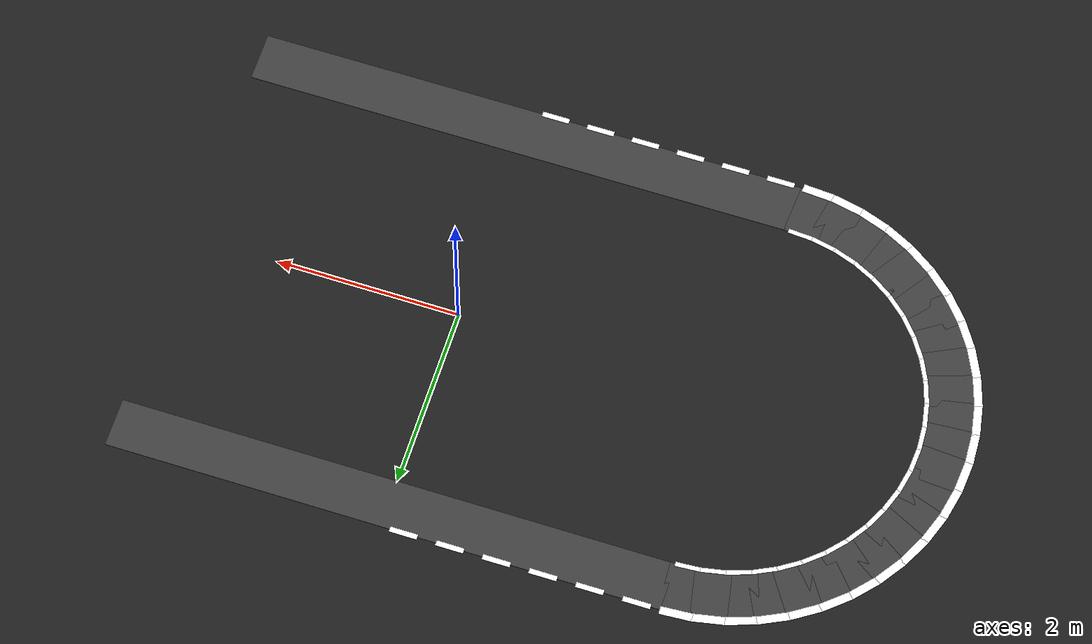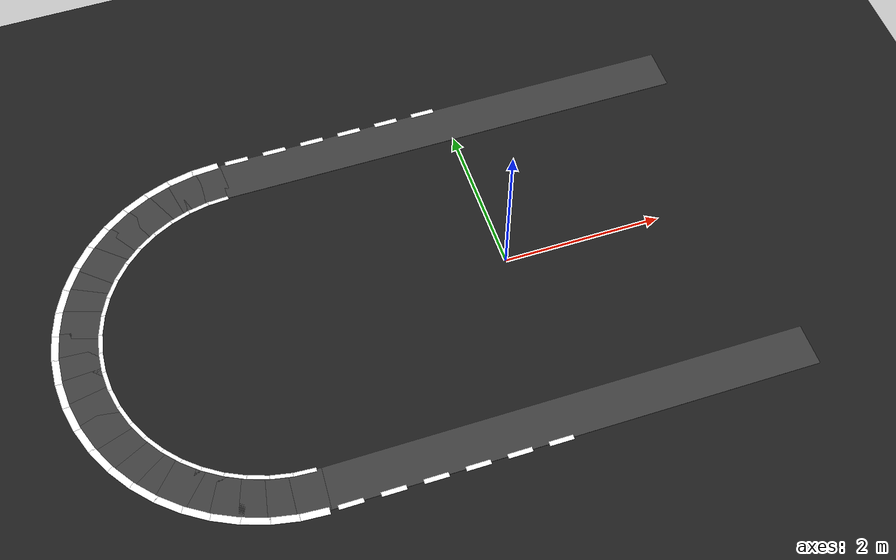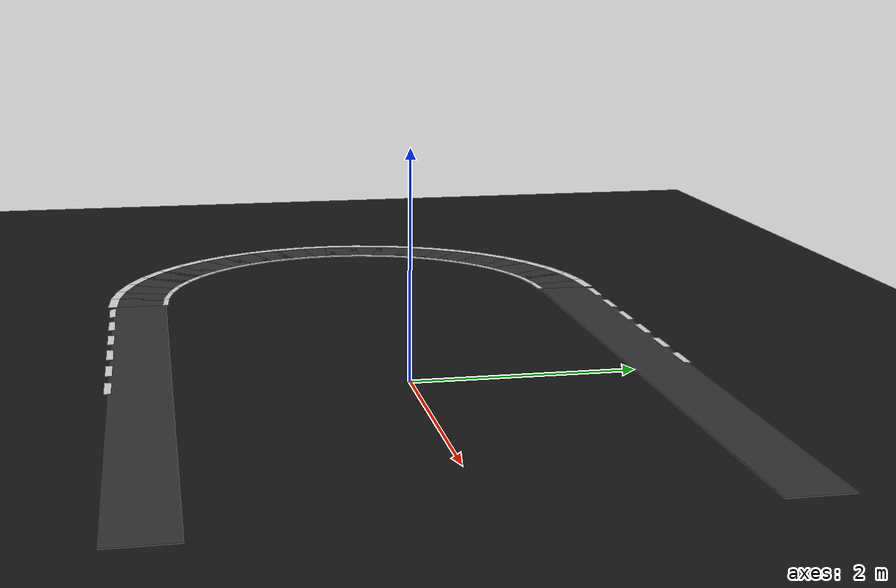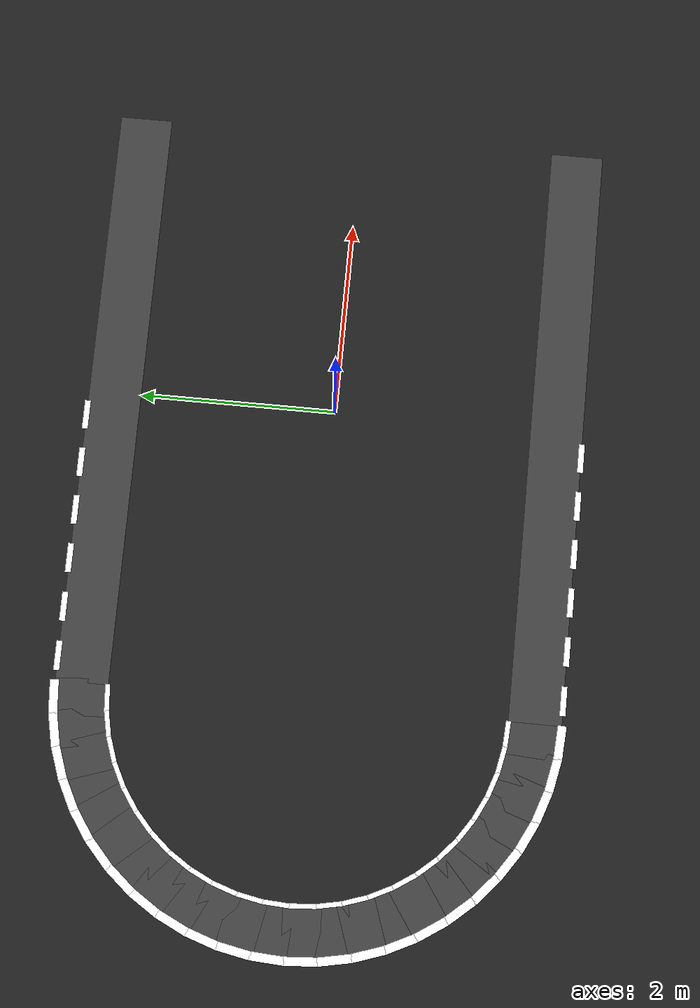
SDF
<sdf version="1.6">
 <world name="oval_lane_world">
  <model name="ground_plane">
   <static>true</static>
   <link name="link">
    <collision name="collision">
     <geometry><plane><normal>0 0 1</normal><size>100 100</size></plane></geometry>
     <surface><friction><ode><mu>1.0</mu><mu2>1.0</mu2></ode></friction></surface>
    </collision>
    <visual name="visual">
     <geometry><plane><normal>0 0 1</normal><size>100 100</size></plane></geometry>
     <material><ambient>0.10 0.10 0.10 1</ambient><diffuse>0.12 0.12 0.12 1</diffuse></material>
    </visual>
   </link>
  </model>
  <model name="road_top">
   <static>true</static>
   <pose>0.00000 2.26700 0.00250 0 0 0.00000</pose>
   <link name="link">
    <visual name="visual">
     <geometry><box><size>6.00000 0.53400 0.00500</size></box></geometry>
     <material>
      <ambient>0.250 0.250 0.250 1</ambient>
      <diffuse>0.250 0.250 0.250 1</diffuse>
      <specular>0.05 0.05 0.05 1</specular>
     </material>
    </visual>
   </link>
  </model>
  <model name="road_bot">
   <static>true</static>
   <pose>0.00000 -2.26700 0.00250 0 0 0.00000</pose>
   <link name="link">
    <visual name="visual">
     <geometry><box><size>6.00000 0.53400 0.00500</size></box></geometry>
     <material>
      <ambient>0.250 0.250 0.250 1</ambient>
      <diffuse>0.250 0.250 0.250 1</diffuse>
      <specular>0.05 0.05 0.05 1</specular>
     </material>
    </visual>
   </link>
  </model>
  <model name="dl_top_1_0">
   <static>true</static>
   <pose>-2.75000 2.53400 0.00700 0 0 0.00000</pose>
   <link name="link">
    <visual name="visual">
     <geometry><box><size>0.30000 0.06000 0.00400</size></box></geometry>
     <material>
      <ambient>1.000 1.000 1.000 1</ambient>
      <diffuse>1.000 1.000 1.000 1</diffuse>
      <specular>0.05 0.05 0.05 1</specular>
     </material>
    </visual>
   </link>
  </model>
  <model name="dl_top_1_1">
   <static>true</static>
   <pose>-2.25000 2.53400 0.00700 0 0 0.00000</pose>
   <link name="link">
    <visual name="visual">
     <geometry><box><size>0.30000 0.06000 0.00400</size></box></geometry>
     <material>
      <ambient>1.000 1.000 1.000 1</ambient>
      <diffuse>1.000 1.000 1.000 1</diffuse>
      <specular>0.05 0.05 0.05 1</specular>
     </material>
    </visual>
   </link>
  </model>
  <model name="dl_top_1_2">
   <static>true</static>
   <pose>-1.75000 2.53400 0.00700 0 0 0.00000</pose>
   <link name="link">
    <visual name="visual">
     <geometry><box><size>0.30000 0.06000 0.00400</size></box></geometry>
     <material>
      <ambient>1.000 1.000 1.000 1</ambient>
      <diffuse>1.000 1.000 1.000 1</diffuse>
      <specular>0.05 0.05 0.05 1</specular>
     </material>
    </visual>
   </link>
  </model>
  <model name="dl_top_1_3">
   <static>true</static>
   <pose>-1.25000 2.53400 0.00700 0 0 0.00000</pose>
   <link name="link">
    <visual name="visual">
     <geometry><box><size>0.30000 0.06000 0.00400</size></box></geometry>
     <material>
      <ambient>1.000 1.000 1.000 1</ambient>
      <diffuse>1.000 1.000 1.000 1</diffuse>
      <specular>0.05 0.05 0.05 1</specular>
     </material>
    </visual>
   </link>
  </model>
  <model name="dl_top_1_4">
   <static>true</static>
   <pose>-0.75000 2.53400 0.00700 0 0 0.00000</pose>
   <link name="link">
    <visual name="visual">
     <geometry><box><size>0.30000 0.06000 0.00400</size></box></geometry>
     <material>
      <ambient>1.000 1.000 1.000 1</ambient>
      <diffuse>1.000 1.000 1.000 1</diffuse>
      <specular>0.05 0.05 0.05 1</specular>
     </material>
    </visual>
   </link>
  </model>
  <model name="dl_top_1_5">
   <static>true</static>
   <pose>-0.25000 2.53400 0.00700 0 0 0.00000</pose>
   <link name="link">
    <visual name="visual">
     <geometry><box><size>0.30000 0.06000 0.00400</size></box></geometry>
     <material>
      <ambient>1.000 1.000 1.000 1</ambient>
      <diffuse>1.000 1.000 1.000 1</diffuse>
      <specular>0.05 0.05 0.05 1</specular>
     </material>
    </visual>
   </link>
  </model>
  <model name="dl_bot_1_0">
   <static>true</static>
   <pose>-2.75000 -2.53400 0.00700 0 0 0.00000</pose>
   <link name="link">
    <visual name="visual">
     <geometry><box><size>0.30000 0.06000 0.00400</size></box></geometry>
     <material>
      <ambient>1.000 1.000 1.000 1</ambient>
      <diffuse>1.000 1.000 1.000 1</diffuse>
      <specular>0.05 0.05 0.05 1</specular>
     </material>
    </visual>
   </link>
  </model>
  <model name="dl_bot_1_1">
   <static>true</static>
   <pose>-2.25000 -2.53400 0.00700 0 0 0.00000</pose>
   <link name="link">
    <visual name="visual">
     <geometry><box><size>0.30000 0.06000 0.00400</size></box></geometry>
     <material>
      <ambient>1.000 1.000 1.000 1</ambient>
      <diffuse>1.000 1.000 1.000 1</diffuse>
      <specular>0.05 0.05 0.05 1</specular>
     </material>
    </visual>
   </link>
  </model>
  <model name="dl_bot_1_2">
   <static>true</static>
   <pose>-1.75000 -2.53400 0.00700 0 0 0.00000</pose>
   <link name="link">
    <visual name="visual">
     <geometry><box><size>0.30000 0.06000 0.00400</size></box></geometry>
     <material>
      <ambient>1.000 1.000 1.000 1</ambient>
      <diffuse>1.000 1.000 1.000 1</diffuse>
      <specular>0.05 0.05 0.05 1</specular>
     </material>
    </visual>
   </link>
  </model>
  <model name="dl_bot_1_3">
   <static>true</static>
   <pose>-1.25000 -2.53400 0.00700 0 0 0.00000</pose>
   <link name="link">
    <visual name="visual">
     <geometry><box><size>0.30000 0.06000 0.00400</size></box></geometry>
     <material>
      <ambient>1.000 1.000 1.000 1</ambient>
      <diffuse>1.000 1.000 1.000 1</diffuse>
      <specular>0.05 0.05 0.05 1</specular>
     </material>
    </visual>
   </link>
  </model>
  <model name="dl_bot_1_4">
   <static>true</static>
   <pose>-0.75000 -2.53400 0.00700 0 0 0.00000</pose>
   <link name="link">
    <visual name="visual">
     <geometry><box><size>0.30000 0.06000 0.00400</size></box></geometry>
     <material>
      <ambient>1.000 1.000 1.000 1</ambient>
      <diffuse>1.000 1.000 1.000 1</diffuse>
      <specular>0.05 0.05 0.05 1</specular>
     </material>
    </visual>
   </link>
  </model>
  <model name="dl_bot_1_5">
   <static>true</static>
   <pose>-0.25000 -2.53400 0.00700 0 0 0.00000</pose>
   <link name="link">
    <visual name="visual">
     <geometry><box><size>0.30000 0.06000 0.00400</size></box></geometry>
     <material>
      <ambient>1.000 1.000 1.000 1</ambient>
      <diffuse>1.000 1.000 1.000 1</diffuse>
      <specular>0.05 0.05 0.05 1</specular>
     </material>
    </visual>
   </link>
  </model>
  <model name="road_l_0">
   <static>true</static>
   <pose>-3.14777 -2.25466 0.00250 0.0 0.0 3.07614</pose>
   <link name="link">
    <visual name="visual">
     <geometry><box><size>0.38165 0.53400 0.00500</size></box></geometry>
     <material>
      <ambient>0.250 0.250 0.250 1</ambient>
      <diffuse>0.250 0.250 0.250 1</diffuse>
      <specular>0.05 0.05 0.05 1</specular>
     </material>
    </visual>
   </link>
  </model>
  <model name="cl_l_0_0">
   <static>true</static>
   <pose>-3.13081 -1.99572 0.00700 0 0 3.07614</pose>
   <link name="link">
    <visual name="visual">
     <geometry><box><size>0.27180 0.05000 0.00400</size></box></geometry>
     <material>
      <ambient>1.000 1.000 1.000 1</ambient>
      <diffuse>1.000 1.000 1.000 1</diffuse>
      <specular>0.05 0.05 0.05 1</specular>
     </material>
    </visual>
   </link>
  </model>
  <model name="cl_l_1_0">
   <static>true</static>
   <pose>-3.16573 -2.52857 0.00700 0 0 3.07614</pose>
   <link name="link">
    <visual name="visual">
     <geometry><box><size>0.34170 0.09000 0.00400</size></box></geometry>
     <material>
      <ambient>1.000 1.000 1.000 1</ambient>
      <diffuse>1.000 1.000 1.000 1</diffuse>
      <specular>0.05 0.05 0.05 1</specular>
     </material>
    </visual>
   </link>
  </model>
  <model name="road_l_1">
   <static>true</static>
   <pose>-3.44081 -2.21609 0.00250 0.0 0.0 2.94524</pose>
   <link name="link">
    <visual name="visual">
     <geometry><box><size>0.38165 0.53400 0.00500</size></box></geometry>
     <material>
      <ambient>0.250 0.250 0.250 1</ambient>
      <diffuse>0.250 0.250 0.250 1</diffuse>
      <specular>0.05 0.05 0.05 1</specular>
     </material>
    </visual>
   </link>
  </model>
  <model name="cl_l_0_1">
   <static>true</static>
   <pose>-3.39018 -1.96157 0.00700 0 0 2.94524</pose>
   <link name="link">
    <visual name="visual">
     <geometry><box><size>0.27180 0.05000 0.00400</size></box></geometry>
     <material>
      <ambient>1.000 1.000 1.000 1</ambient>
      <diffuse>1.000 1.000 1.000 1</diffuse>
      <specular>0.05 0.05 0.05 1</specular>
     </material>
    </visual>
   </link>
  </model>
  <model name="cl_l_1_1">
   <static>true</static>
   <pose>-3.49436 -2.48531 0.00700 0 0 2.94524</pose>
   <link name="link">
    <visual name="visual">
     <geometry><box><size>0.34170 0.09000 0.00400</size></box></geometry>
     <material>
      <ambient>1.000 1.000 1.000 1</ambient>
      <diffuse>1.000 1.000 1.000 1</diffuse>
      <specular>0.05 0.05 0.05 1</specular>
     </material>
    </visual>
   </link>
  </model>
  <model name="road_l_2">
   <static>true</static>
   <pose>-3.72629 -2.13959 0.00250 0.0 0.0 2.81434</pose>
   <link name="link">
    <visual name="visual">
     <geometry><box><size>0.38165 0.53400 0.00500</size></box></geometry>
     <material>
      <ambient>0.250 0.250 0.250 1</ambient>
      <diffuse>0.250 0.250 0.250 1</diffuse>
      <specular>0.05 0.05 0.05 1</specular>
     </material>
    </visual>
   </link>
  </model>
  <model name="cl_l_0_2">
   <static>true</static>
   <pose>-3.64288 -1.89386 0.00700 0 0 2.81434</pose>
   <link name="link">
    <visual name="visual">
     <geometry><box><size>0.27180 0.05000 0.00400</size></box></geometry>
     <material>
      <ambient>1.000 1.000 1.000 1</ambient>
      <diffuse>1.000 1.000 1.000 1</diffuse>
      <specular>0.05 0.05 0.05 1</specular>
     </material>
    </visual>
   </link>
  </model>
  <model name="cl_l_1_2">
   <static>true</static>
   <pose>-3.81453 -2.39952 0.00700 0 0 2.81434</pose>
   <link name="link">
    <visual name="visual">
     <geometry><box><size>0.34170 0.09000 0.00400</size></box></geometry>
     <material>
      <ambient>1.000 1.000 1.000 1</ambient>
      <diffuse>1.000 1.000 1.000 1</diffuse>
      <specular>0.05 0.05 0.05 1</specular>
     </material>
    </visual>
   </link>
  </model>
  <model name="road_l_3">
   <static>true</static>
   <pose>-3.99935 -2.02648 0.00250 0.0 0.0 2.68344</pose>
   <link name="link">
    <visual name="visual">
     <geometry><box><size>0.38165 0.53400 0.00500</size></box></geometry>
     <material>
      <ambient>0.250 0.250 0.250 1</ambient>
      <diffuse>0.250 0.250 0.250 1</diffuse>
      <specular>0.05 0.05 0.05 1</specular>
     </material>
    </visual>
   </link>
  </model>
  <model name="cl_l_0_3">
   <static>true</static>
   <pose>-3.88458 -1.79375 0.00700 0 0 2.68344</pose>
   <link name="link">
    <visual name="visual">
     <geometry><box><size>0.27180 0.05000 0.00400</size></box></geometry>
     <material>
      <ambient>1.000 1.000 1.000 1</ambient>
      <diffuse>1.000 1.000 1.000 1</diffuse>
      <specular>0.05 0.05 0.05 1</specular>
     </material>
    </visual>
   </link>
  </model>
  <model name="cl_l_1_3">
   <static>true</static>
   <pose>-4.12076 -2.27268 0.00700 0 0 2.68344</pose>
   <link name="link">
    <visual name="visual">
     <geometry><box><size>0.34170 0.09000 0.00400</size></box></geometry>
     <material>
      <ambient>1.000 1.000 1.000 1</ambient>
      <diffuse>1.000 1.000 1.000 1</diffuse>
      <specular>0.05 0.05 0.05 1</specular>
     </material>
    </visual>
   </link>
  </model>
  <model name="road_l_4">
   <static>true</static>
   <pose>-4.25531 -1.87871 0.00250 0.0 0.0 2.55254</pose>
   <link name="link">
    <visual name="visual">
     <geometry><box><size>0.38165 0.53400 0.00500</size></box></geometry>
     <material>
      <ambient>0.250 0.250 0.250 1</ambient>
      <diffuse>0.250 0.250 0.250 1</diffuse>
      <specular>0.05 0.05 0.05 1</specular>
     </material>
    </visual>
   </link>
  </model>
  <model name="cl_l_0_4">
   <static>true</static>
   <pose>-4.11114 -1.66294 0.00700 0 0 2.55254</pose>
   <link name="link">
    <visual name="visual">
     <geometry><box><size>0.27180 0.05000 0.00400</size></box></geometry>
     <material>
      <ambient>1.000 1.000 1.000 1</ambient>
      <diffuse>1.000 1.000 1.000 1</diffuse>
      <specular>0.05 0.05 0.05 1</specular>
     </material>
    </visual>
   </link>
  </model>
  <model name="cl_l_1_4">
   <static>true</static>
   <pose>-4.40781 -2.10694 0.00700 0 0 2.55254</pose>
   <link name="link">
    <visual name="visual">
     <geometry><box><size>0.34170 0.09000 0.00400</size></box></geometry>
     <material>
      <ambient>1.000 1.000 1.000 1</ambient>
      <diffuse>1.000 1.000 1.000 1</diffuse>
      <specular>0.05 0.05 0.05 1</specular>
     </material>
    </visual>
   </link>
  </model>
  <model name="road_l_5">
   <static>true</static>
   <pose>-4.48979 -1.69878 0.00250 0.0 0.0 2.42164</pose>
   <link name="link">
    <visual name="visual">
     <geometry><box><size>0.38165 0.53400 0.00500</size></box></geometry>
     <material>
      <ambient>0.250 0.250 0.250 1</ambient>
      <diffuse>0.250 0.250 0.250 1</diffuse>
      <specular>0.05 0.05 0.05 1</specular>
     </material>
    </visual>
   </link>
  </model>
  <model name="cl_l_0_5">
   <static>true</static>
   <pose>-4.31869 -1.50368 0.00700 0 0 2.42164</pose>
   <link name="link">
    <visual name="visual">
     <geometry><box><size>0.27180 0.05000 0.00400</size></box></geometry>
     <material>
      <ambient>1.000 1.000 1.000 1</ambient>
      <diffuse>1.000 1.000 1.000 1</diffuse>
      <specular>0.05 0.05 0.05 1</specular>
     </material>
    </visual>
   </link>
  </model>
  <model name="cl_l_1_5">
   <static>true</static>
   <pose>-4.67078 -1.90516 0.00700 0 0 2.42164</pose>
   <link name="link">
    <visual name="visual">
     <geometry><box><size>0.34170 0.09000 0.00400</size></box></geometry>
     <material>
      <ambient>1.000 1.000 1.000 1</ambient>
      <diffuse>1.000 1.000 1.000 1</diffuse>
      <specular>0.05 0.05 0.05 1</specular>
     </material>
    </visual>
   </link>
  </model>
  <model name="road_l_6">
   <static>true</static>
   <pose>-4.69878 -1.48980 0.00250 0.0 0.0 2.29074</pose>
   <link name="link">
    <visual name="visual">
     <geometry><box><size>0.38165 0.53400 0.00500</size></box></geometry>
     <material>
      <ambient>0.250 0.250 0.250 1</ambient>
      <diffuse>0.250 0.250 0.250 1</diffuse>
      <specular>0.05 0.05 0.05 1</specular>
     </material>
    </visual>
   </link>
  </model>
  <model name="cl_l_0_6">
   <static>true</static>
   <pose>-4.50368 -1.31869 0.00700 0 0 2.29074</pose>
   <link name="link">
    <visual name="visual">
     <geometry><box><size>0.27180 0.05000 0.00400</size></box></geometry>
     <material>
      <ambient>1.000 1.000 1.000 1</ambient>
      <diffuse>1.000 1.000 1.000 1</diffuse>
      <specular>0.05 0.05 0.05 1</specular>
     </material>
    </visual>
   </link>
  </model>
  <model name="cl_l_1_6">
   <static>true</static>
   <pose>-4.90516 -1.67078 0.00700 0 0 2.29074</pose>
   <link name="link">
    <visual name="visual">
     <geometry><box><size>0.34170 0.09000 0.00400</size></box></geometry>
     <material>
      <ambient>1.000 1.000 1.000 1</ambient>
      <diffuse>1.000 1.000 1.000 1</diffuse>
      <specular>0.05 0.05 0.05 1</specular>
     </material>
    </visual>
   </link>
  </model>
  <model name="road_l_7">
   <static>true</static>
   <pose>-4.87871 -1.25531 0.00250 0.0 0.0 2.15984</pose>
   <link name="link">
    <visual name="visual">
     <geometry><box><size>0.38165 0.53400 0.00500</size></box></geometry>
     <material>
      <ambient>0.250 0.250 0.250 1</ambient>
      <diffuse>0.250 0.250 0.250 1</diffuse>
      <specular>0.05 0.05 0.05 1</specular>
     </material>
    </visual>
   </link>
  </model>
  <model name="cl_l_0_7">
   <static>true</static>
   <pose>-4.66294 -1.11114 0.00700 0 0 2.15984</pose>
   <link name="link">
    <visual name="visual">
     <geometry><box><size>0.27180 0.05000 0.00400</size></box></geometry>
     <material>
      <ambient>1.000 1.000 1.000 1</ambient>
      <diffuse>1.000 1.000 1.000 1</diffuse>
      <specular>0.05 0.05 0.05 1</specular>
     </material>
    </visual>
   </link>
  </model>
  <model name="cl_l_1_7">
   <static>true</static>
   <pose>-5.10694 -1.40781 0.00700 0 0 2.15984</pose>
   <link name="link">
    <visual name="visual">
     <geometry><box><size>0.34170 0.09000 0.00400</size></box></geometry>
     <material>
      <ambient>1.000 1.000 1.000 1</ambient>
      <diffuse>1.000 1.000 1.000 1</diffuse>
      <specular>0.05 0.05 0.05 1</specular>
     </material>
    </visual>
   </link>
  </model>
  <model name="road_l_8">
   <static>true</static>
   <pose>-5.02648 -0.99935 0.00250 0.0 0.0 2.02895</pose>
   <link name="link">
    <visual name="visual">
     <geometry><box><size>0.38165 0.53400 0.00500</size></box></geometry>
     <material>
      <ambient>0.250 0.250 0.250 1</ambient>
      <diffuse>0.250 0.250 0.250 1</diffuse>
      <specular>0.05 0.05 0.05 1</specular>
     </material>
    </visual>
   </link>
  </model>
  <model name="cl_l_0_8">
   <static>true</static>
   <pose>-4.79375 -0.88458 0.00700 0 0 2.02895</pose>
   <link name="link">
    <visual name="visual">
     <geometry><box><size>0.27180 0.05000 0.00400</size></box></geometry>
     <material>
      <ambient>1.000 1.000 1.000 1</ambient>
      <diffuse>1.000 1.000 1.000 1</diffuse>
      <specular>0.05 0.05 0.05 1</specular>
     </material>
    </visual>
   </link>
  </model>
  <model name="cl_l_1_8">
   <static>true</static>
   <pose>-5.27268 -1.12076 0.00700 0 0 2.02895</pose>
   <link name="link">
    <visual name="visual">
     <geometry><box><size>0.34170 0.09000 0.00400</size></box></geometry>
     <material>
      <ambient>1.000 1.000 1.000 1</ambient>
      <diffuse>1.000 1.000 1.000 1</diffuse>
      <specular>0.05 0.05 0.05 1</specular>
     </material>
    </visual>
   </link>
  </model>
  <model name="road_l_9">
   <static>true</static>
   <pose>-5.13959 -0.72629 0.00250 0.0 0.0 1.89805</pose>
   <link name="link">
    <visual name="visual">
     <geometry><box><size>0.38165 0.53400 0.00500</size></box></geometry>
     <material>
      <ambient>0.250 0.250 0.250 1</ambient>
      <diffuse>0.250 0.250 0.250 1</diffuse>
      <specular>0.05 0.05 0.05 1</specular>
     </material>
    </visual>
   </link>
  </model>
  <model name="cl_l_0_9">
   <static>true</static>
   <pose>-4.89386 -0.64288 0.00700 0 0 1.89805</pose>
   <link name="link">
    <visual name="visual">
     <geometry><box><size>0.27180 0.05000 0.00400</size></box></geometry>
     <material>
      <ambient>1.000 1.000 1.000 1</ambient>
      <diffuse>1.000 1.000 1.000 1</diffuse>
      <specular>0.05 0.05 0.05 1</specular>
     </material>
    </visual>
   </link>
  </model>
  <model name="cl_l_1_9">
   <static>true</static>
   <pose>-5.39952 -0.81453 0.00700 0 0 1.89805</pose>
   <link name="link">
    <visual name="visual">
     <geometry><box><size>0.34170 0.09000 0.00400</size></box></geometry>
     <material>
      <ambient>1.000 1.000 1.000 1</ambient>
      <diffuse>1.000 1.000 1.000 1</diffuse>
      <specular>0.05 0.05 0.05 1</specular>
     </material>
    </visual>
   </link>
  </model>
  <model name="road_l_10">
   <static>true</static>
   <pose>-5.21609 -0.44081 0.00250 0.0 0.0 1.76715</pose>
   <link name="link">
    <visual name="visual">
     <geometry><box><size>0.38165 0.53400 0.00500</size></box></geometry>
     <material>
      <ambient>0.250 0.250 0.250 1</ambient>
      <diffuse>0.250 0.250 0.250 1</diffuse>
      <specular>0.05 0.05 0.05 1</specular>
     </material>
    </visual>
   </link>
  </model>
  <model name="cl_l_0_10">
   <static>true</static>
   <pose>-4.96157 -0.39018 0.00700 0 0 1.76715</pose>
   <link name="link">
    <visual name="visual">
     <geometry><box><size>0.27180 0.05000 0.00400</size></box></geometry>
     <material>
      <ambient>1.000 1.000 1.000 1</ambient>
      <diffuse>1.000 1.000 1.000 1</diffuse>
      <specular>0.05 0.05 0.05 1</specular>
     </material>
    </visual>
   </link>
  </model>
  <model name="cl_l_1_10">
   <static>true</static>
   <pose>-5.48531 -0.49436 0.00700 0 0 1.76715</pose>
   <link name="link">
    <visual name="visual">
     <geometry><box><size>0.34170 0.09000 0.00400</size></box></geometry>
     <material>
      <ambient>1.000 1.000 1.000 1</ambient>
      <diffuse>1.000 1.000 1.000 1</diffuse>
      <specular>0.05 0.05 0.05 1</specular>
     </material>
    </visual>
   </link>
  </model>
  <model name="road_l_11">
   <static>true</static>
   <pose>-5.25466 -0.14777 0.00250 0.0 0.0 1.63625</pose>
   <link name="link">
    <visual name="visual">
     <geometry><box><size>0.38165 0.53400 0.00500</size></box></geometry>
     <material>
      <ambient>0.250 0.250 0.250 1</ambient>
      <diffuse>0.250 0.250 0.250 1</diffuse>
      <specular>0.05 0.05 0.05 1</specular>
     </material>
    </visual>
   </link>
  </model>
  <model name="cl_l_0_11">
   <static>true</static>
   <pose>-4.99572 -0.13081 0.00700 0 0 1.63625</pose>
   <link name="link">
    <visual name="visual">
     <geometry><box><size>0.27180 0.05000 0.00400</size></box></geometry>
     <material>
      <ambient>1.000 1.000 1.000 1</ambient>
      <diffuse>1.000 1.000 1.000 1</diffuse>
      <specular>0.05 0.05 0.05 1</specular>
     </material>
    </visual>
   </link>
  </model>
  <model name="cl_l_1_11">
   <static>true</static>
   <pose>-5.52858 -0.16573 0.00700 0 0 1.63625</pose>
   <link name="link">
    <visual name="visual">
     <geometry><box><size>0.34170 0.09000 0.00400</size></box></geometry>
     <material>
      <ambient>1.000 1.000 1.000 1</ambient>
      <diffuse>1.000 1.000 1.000 1</diffuse>
      <specular>0.05 0.05 0.05 1</specular>
     </material>
    </visual>
   </link>
  </model>
  <model name="road_l_12">
   <static>true</static>
   <pose>-5.25466 0.14778 0.00250 0.0 0.0 1.50535</pose>
   <link name="link">
    <visual name="visual">
     <geometry><box><size>0.38165 0.53400 0.00500</size></box></geometry>
     <material>
      <ambient>0.250 0.250 0.250 1</ambient>
      <diffuse>0.250 0.250 0.250 1</diffuse>
      <specular>0.05 0.05 0.05 1</specular>
     </material>
    </visual>
   </link>
  </model>
  <model name="cl_l_0_12">
   <static>true</static>
   <pose>-4.99572 0.13081 0.00700 0 0 1.50535</pose>
   <link name="link">
    <visual name="visual">
     <geometry><box><size>0.27180 0.05000 0.00400</size></box></geometry>
     <material>
      <ambient>1.000 1.000 1.000 1</ambient>
      <diffuse>1.000 1.000 1.000 1</diffuse>
      <specular>0.05 0.05 0.05 1</specular>
     </material>
    </visual>
   </link>
  </model>
  <model name="cl_l_1_12">
   <static>true</static>
   <pose>-5.52857 0.16573 0.00700 0 0 1.50535</pose>
   <link name="link">
    <visual name="visual">
     <geometry><box><size>0.34170 0.09000 0.00400</size></box></geometry>
     <material>
      <ambient>1.000 1.000 1.000 1</ambient>
      <diffuse>1.000 1.000 1.000 1</diffuse>
      <specular>0.05 0.05 0.05 1</specular>
     </material>
    </visual>
   </link>
  </model>
  <model name="road_l_13">
   <static>true</static>
   <pose>-5.21608 0.44081 0.00250 0.0 0.0 1.37445</pose>
   <link name="link">
    <visual name="visual">
     <geometry><box><size>0.38165 0.53400 0.00500</size></box></geometry>
     <material>
      <ambient>0.250 0.250 0.250 1</ambient>
      <diffuse>0.250 0.250 0.250 1</diffuse>
      <specular>0.05 0.05 0.05 1</specular>
     </material>
    </visual>
   </link>
  </model>
  <model name="cl_l_0_13">
   <static>true</static>
   <pose>-4.96157 0.39018 0.00700 0 0 1.37445</pose>
   <link name="link">
    <visual name="visual">
     <geometry><box><size>0.27180 0.05000 0.00400</size></box></geometry>
     <material>
      <ambient>1.000 1.000 1.000 1</ambient>
      <diffuse>1.000 1.000 1.000 1</diffuse>
      <specular>0.05 0.05 0.05 1</specular>
     </material>
    </visual>
   </link>
  </model>
  <model name="cl_l_1_13">
   <static>true</static>
   <pose>-5.48531 0.49436 0.00700 0 0 1.37445</pose>
   <link name="link">
    <visual name="visual">
     <geometry><box><size>0.34170 0.09000 0.00400</size></box></geometry>
     <material>
      <ambient>1.000 1.000 1.000 1</ambient>
      <diffuse>1.000 1.000 1.000 1</diffuse>
      <specular>0.05 0.05 0.05 1</specular>
     </material>
    </visual>
   </link>
  </model>
  <model name="road_l_14">
   <static>true</static>
   <pose>-5.13959 0.72629 0.00250 0.0 0.0 1.24355</pose>
   <link name="link">
    <visual name="visual">
     <geometry><box><size>0.38165 0.53400 0.00500</size></box></geometry>
     <material>
      <ambient>0.250 0.250 0.250 1</ambient>
      <diffuse>0.250 0.250 0.250 1</diffuse>
      <specular>0.05 0.05 0.05 1</specular>
     </material>
    </visual>
   </link>
  </model>
  <model name="cl_l_0_14">
   <static>true</static>
   <pose>-4.89386 0.64288 0.00700 0 0 1.24355</pose>
   <link name="link">
    <visual name="visual">
     <geometry><box><size>0.27180 0.05000 0.00400</size></box></geometry>
     <material>
      <ambient>1.000 1.000 1.000 1</ambient>
      <diffuse>1.000 1.000 1.000 1</diffuse>
      <specular>0.05 0.05 0.05 1</specular>
     </material>
    </visual>
   </link>
  </model>
  <model name="cl_l_1_14">
   <static>true</static>
   <pose>-5.39952 0.81453 0.00700 0 0 1.24355</pose>
   <link name="link">
    <visual name="visual">
     <geometry><box><size>0.34170 0.09000 0.00400</size></box></geometry>
     <material>
      <ambient>1.000 1.000 1.000 1</ambient>
      <diffuse>1.000 1.000 1.000 1</diffuse>
      <specular>0.05 0.05 0.05 1</specular>
     </material>
    </visual>
   </link>
  </model>
  <model name="road_l_15">
   <static>true</static>
   <pose>-5.02648 0.99935 0.00250 0.0 0.0 1.11265</pose>
   <link name="link">
    <visual name="visual">
     <geometry><box><size>0.38165 0.53400 0.00500</size></box></geometry>
     <material>
      <ambient>0.250 0.250 0.250 1</ambient>
      <diffuse>0.250 0.250 0.250 1</diffuse>
      <specular>0.05 0.05 0.05 1</specular>
     </material>
    </visual>
   </link>
  </model>
  <model name="cl_l_0_15">
   <static>true</static>
   <pose>-4.79375 0.88458 0.00700 0 0 1.11265</pose>
   <link name="link">
    <visual name="visual">
     <geometry><box><size>0.27180 0.05000 0.00400</size></box></geometry>
     <material>
      <ambient>1.000 1.000 1.000 1</ambient>
      <diffuse>1.000 1.000 1.000 1</diffuse>
      <specular>0.05 0.05 0.05 1</specular>
     </material>
    </visual>
   </link>
  </model>
  <model name="cl_l_1_15">
   <static>true</static>
   <pose>-5.27268 1.12076 0.00700 0 0 1.11265</pose>
   <link name="link">
    <visual name="visual">
     <geometry><box><size>0.34170 0.09000 0.00400</size></box></geometry>
     <material>
      <ambient>1.000 1.000 1.000 1</ambient>
      <diffuse>1.000 1.000 1.000 1</diffuse>
      <specular>0.05 0.05 0.05 1</specular>
     </material>
    </visual>
   </link>
  </model>
  <model name="road_l_16">
   <static>true</static>
   <pose>-4.87871 1.25531 0.00250 0.0 0.0 0.98175</pose>
   <link name="link">
    <visual name="visual">
     <geometry><box><size>0.38165 0.53400 0.00500</size></box></geometry>
     <material>
      <ambient>0.250 0.250 0.250 1</ambient>
      <diffuse>0.250 0.250 0.250 1</diffuse>
      <specular>0.05 0.05 0.05 1</specular>
     </material>
    </visual>
   </link>
  </model>
  <model name="cl_l_0_16">
   <static>true</static>
   <pose>-4.66294 1.11114 0.00700 0 0 0.98175</pose>
   <link name="link">
    <visual name="visual">
     <geometry><box><size>0.27180 0.05000 0.00400</size></box></geometry>
     <material>
      <ambient>1.000 1.000 1.000 1</ambient>
      <diffuse>1.000 1.000 1.000 1</diffuse>
      <specular>0.05 0.05 0.05 1</specular>
     </material>
    </visual>
   </link>
  </model>
  <model name="cl_l_1_16">
   <static>true</static>
   <pose>-5.10694 1.40781 0.00700 0 0 0.98175</pose>
   <link name="link">
    <visual name="visual">
     <geometry><box><size>0.34170 0.09000 0.00400</size></box></geometry>
     <material>
      <ambient>1.000 1.000 1.000 1</ambient>
      <diffuse>1.000 1.000 1.000 1</diffuse>
      <specular>0.05 0.05 0.05 1</specular>
     </material>
    </visual>
   </link>
  </model>
  <model name="road_l_17">
   <static>true</static>
   <pose>-4.69878 1.48980 0.00250 0.0 0.0 0.85085</pose>
   <link name="link">
    <visual name="visual">
     <geometry><box><size>0.38165 0.53400 0.00500</size></box></geometry>
     <material>
      <ambient>0.250 0.250 0.250 1</ambient>
      <diffuse>0.250 0.250 0.250 1</diffuse>
      <specular>0.05 0.05 0.05 1</specular>
     </material>
    </visual>
   </link>
  </model>
  <model name="cl_l_0_17">
   <static>true</static>
   <pose>-4.50368 1.31869 0.00700 0 0 0.85085</pose>
   <link name="link">
    <visual name="visual">
     <geometry><box><size>0.27180 0.05000 0.00400</size></box></geometry>
     <material>
      <ambient>1.000 1.000 1.000 1</ambient>
      <diffuse>1.000 1.000 1.000 1</diffuse>
      <specular>0.05 0.05 0.05 1</specular>
     </material>
    </visual>
   </link>
  </model>
  <model name="cl_l_1_17">
   <static>true</static>
   <pose>-4.90516 1.67078 0.00700 0 0 0.85085</pose>
   <link name="link">
    <visual name="visual">
     <geometry><box><size>0.34170 0.09000 0.00400</size></box></geometry>
     <material>
      <ambient>1.000 1.000 1.000 1</ambient>
      <diffuse>1.000 1.000 1.000 1</diffuse>
      <specular>0.05 0.05 0.05 1</specular>
     </material>
    </visual>
   </link>
  </model>
  <model name="road_l_18">
   <static>true</static>
   <pose>-4.48979 1.69878 0.00250 0.0 0.0 0.71995</pose>
   <link name="link">
    <visual name="visual">
     <geometry><box><size>0.38165 0.53400 0.00500</size></box></geometry>
     <material>
      <ambient>0.250 0.250 0.250 1</ambient>
      <diffuse>0.250 0.250 0.250 1</diffuse>
      <specular>0.05 0.05 0.05 1</specular>
     </material>
    </visual>
   </link>
  </model>
  <model name="cl_l_0_18">
   <static>true</static>
   <pose>-4.31869 1.50368 0.00700 0 0 0.71995</pose>
   <link name="link">
    <visual name="visual">
     <geometry><box><size>0.27180 0.05000 0.00400</size></box></geometry>
     <material>
      <ambient>1.000 1.000 1.000 1</ambient>
      <diffuse>1.000 1.000 1.000 1</diffuse>
      <specular>0.05 0.05 0.05 1</specular>
     </material>
    </visual>
   </link>
  </model>
  <model name="cl_l_1_18">
   <static>true</static>
   <pose>-4.67078 1.90516 0.00700 0 0 0.71995</pose>
   <link name="link">
    <visual name="visual">
     <geometry><box><size>0.34170 0.09000 0.00400</size></box></geometry>
     <material>
      <ambient>1.000 1.000 1.000 1</ambient>
      <diffuse>1.000 1.000 1.000 1</diffuse>
      <specular>0.05 0.05 0.05 1</specular>
     </material>
    </visual>
   </link>
  </model>
  <model name="road_l_19">
   <static>true</static>
   <pose>-4.25531 1.87871 0.00250 0.0 0.0 0.58905</pose>
   <link name="link">
    <visual name="visual">
     <geometry><box><size>0.38165 0.53400 0.00500</size></box></geometry>
     <material>
      <ambient>0.250 0.250 0.250 1</ambient>
      <diffuse>0.250 0.250 0.250 1</diffuse>
      <specular>0.05 0.05 0.05 1</specular>
     </material>
    </visual>
   </link>
  </model>
  <model name="cl_l_0_19">
   <static>true</static>
   <pose>-4.11114 1.66294 0.00700 0 0 0.58905</pose>
   <link name="link">
    <visual name="visual">
     <geometry><box><size>0.27180 0.05000 0.00400</size></box></geometry>
     <material>
      <ambient>1.000 1.000 1.000 1</ambient>
      <diffuse>1.000 1.000 1.000 1</diffuse>
      <specular>0.05 0.05 0.05 1</specular>
     </material>
    </visual>
   </link>
  </model>
  <model name="cl_l_1_19">
   <static>true</static>
   <pose>-4.40781 2.10694 0.00700 0 0 0.58905</pose>
   <link name="link">
    <visual name="visual">
     <geometry><box><size>0.34170 0.09000 0.00400</size></box></geometry>
     <material>
      <ambient>1.000 1.000 1.000 1</ambient>
      <diffuse>1.000 1.000 1.000 1</diffuse>
      <specular>0.05 0.05 0.05 1</specular>
     </material>
    </visual>
   </link>
  </model>
  <model name="road_l_20">
   <static>true</static>
   <pose>-3.99935 2.02648 0.00250 0.0 0.0 0.45815</pose>
   <link name="link">
    <visual name="visual">
     <geometry><box><size>0.38165 0.53400 0.00500</size></box></geometry>
     <material>
      <ambient>0.250 0.250 0.250 1</ambient>
      <diffuse>0.250 0.250 0.250 1</diffuse>
      <specular>0.05 0.05 0.05 1</specular>
     </material>
    </visual>
   </link>
  </model>
  <model name="cl_l_0_20">
   <static>true</static>
   <pose>-3.88458 1.79375 0.00700 0 0 0.45815</pose>
   <link name="link">
    <visual name="visual">
     <geometry><box><size>0.27180 0.05000 0.00400</size></box></geometry>
     <material>
      <ambient>1.000 1.000 1.000 1</ambient>
      <diffuse>1.000 1.000 1.000 1</diffuse>
      <specular>0.05 0.05 0.05 1</specular>
     </material>
    </visual>
   </link>
  </model>
  <model name="cl_l_1_20">
   <static>true</static>
   <pose>-4.12076 2.27268 0.00700 0 0 0.45815</pose>
   <link name="link">
    <visual name="visual">
     <geometry><box><size>0.34170 0.09000 0.00400</size></box></geometry>
     <material>
      <ambient>1.000 1.000 1.000 1</ambient>
      <diffuse>1.000 1.000 1.000 1</diffuse>
      <specular>0.05 0.05 0.05 1</specular>
     </material>
    </visual>
   </link>
  </model>
  <model name="road_l_21">
   <static>true</static>
   <pose>-3.72629 2.13959 0.00250 0.0 0.0 0.32725</pose>
   <link name="link">
    <visual name="visual">
     <geometry><box><size>0.38165 0.53400 0.00500</size></box></geometry>
     <material>
      <ambient>0.250 0.250 0.250 1</ambient>
      <diffuse>0.250 0.250 0.250 1</diffuse>
      <specular>0.05 0.05 0.05 1</specular>
     </material>
    </visual>
   </link>
  </model>
  <model name="cl_l_0_21">
   <static>true</static>
   <pose>-3.64288 1.89386 0.00700 0 0 0.32725</pose>
   <link name="link">
    <visual name="visual">
     <geometry><box><size>0.27180 0.05000 0.00400</size></box></geometry>
     <material>
      <ambient>1.000 1.000 1.000 1</ambient>
      <diffuse>1.000 1.000 1.000 1</diffuse>
      <specular>0.05 0.05 0.05 1</specular>
     </material>
    </visual>
   </link>
  </model>
  <model name="cl_l_1_21">
   <static>true</static>
   <pose>-3.81453 2.39952 0.00700 0 0 0.32725</pose>
   <link name="link">
    <visual name="visual">
     <geometry><box><size>0.34170 0.09000 0.00400</size></box></geometry>
     <material>
      <ambient>1.000 1.000 1.000 1</ambient>
      <diffuse>1.000 1.000 1.000 1</diffuse>
      <specular>0.05 0.05 0.05 1</specular>
     </material>
    </visual>
   </link>
  </model>
  <model name="road_l_22">
   <static>true</static>
   <pose>-3.44081 2.21608 0.00250 0.0 0.0 0.19635</pose>
   <link name="link">
    <visual name="visual">
     <geometry><box><size>0.38165 0.53400 0.00500</size></box></geometry>
     <material>
      <ambient>0.250 0.250 0.250 1</ambient>
      <diffuse>0.250 0.250 0.250 1</diffuse>
      <specular>0.05 0.05 0.05 1</specular>
     </material>
    </visual>
   </link>
  </model>
  <model name="cl_l_0_22">
   <static>true</static>
   <pose>-3.39018 1.96157 0.00700 0 0 0.19635</pose>
   <link name="link">
    <visual name="visual">
     <geometry><box><size>0.27180 0.05000 0.00400</size></box></geometry>
     <material>
      <ambient>1.000 1.000 1.000 1</ambient>
      <diffuse>1.000 1.000 1.000 1</diffuse>
      <specular>0.05 0.05 0.05 1</specular>
     </material>
    </visual>
   </link>
  </model>
  <model name="cl_l_1_22">
   <static>true</static>
   <pose>-3.49436 2.48531 0.00700 0 0 0.19635</pose>
   <link name="link">
    <visual name="visual">
     <geometry><box><size>0.34170 0.09000 0.00400</size></box></geometry>
     <material>
      <ambient>1.000 1.000 1.000 1</ambient>
      <diffuse>1.000 1.000 1.000 1</diffuse>
      <specular>0.05 0.05 0.05 1</specular>
     </material>
    </visual>
   </link>
  </model>
  <model name="road_l_23">
   <static>true</static>
   <pose>-3.14777 2.25466 0.00250 0.0 0.0 0.06545</pose>
   <link name="link">
    <visual name="visual">
     <geometry><box><size>0.38165 0.53400 0.00500</size></box></geometry>
     <material>
      <ambient>0.250 0.250 0.250 1</ambient>
      <diffuse>0.250 0.250 0.250 1</diffuse>
      <specular>0.05 0.05 0.05 1</specular>
     </material>
    </visual>
   </link>
  </model>
  <model name="cl_l_0_23">
   <static>true</static>
   <pose>-3.13081 1.99572 0.00700 0 0 0.06545</pose>
   <link name="link">
    <visual name="visual">
     <geometry><box><size>0.27180 0.05000 0.00400</size></box></geometry>
     <material>
      <ambient>1.000 1.000 1.000 1</ambient>
      <diffuse>1.000 1.000 1.000 1</diffuse>
      <specular>0.05 0.05 0.05 1</specular>
     </material>
    </visual>
   </link>
  </model>
  <model name="cl_l_1_23">
   <static>true</static>
   <pose>-3.16573 2.52858 0.00700 0 0 0.06545</pose>
   <link name="link">
    <visual name="visual">
     <geometry><box><size>0.34170 0.09000 0.00400</size></box></geometry>
     <material>
      <ambient>1.000 1.000 1.000 1</ambient>
      <diffuse>1.000 1.000 1.000 1</diffuse>
      <specular>0.05 0.05 0.05 1</specular>
     </material>
    </visual>
   </link>
  </model>
 </world>
</sdf>
